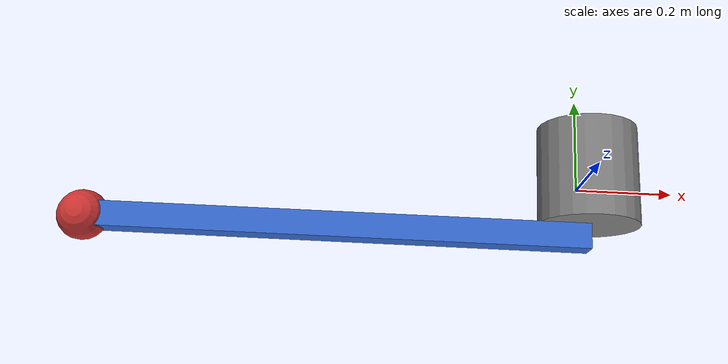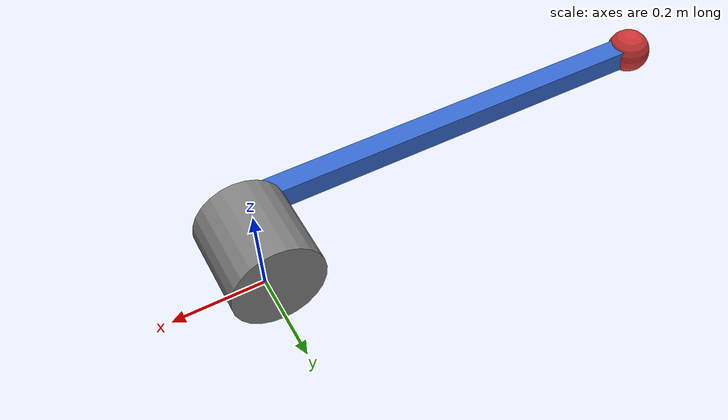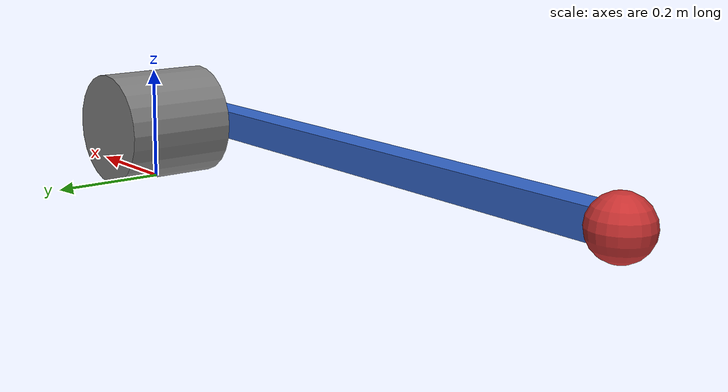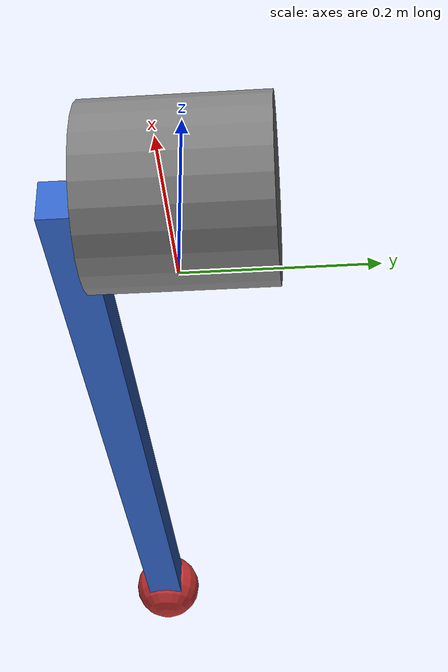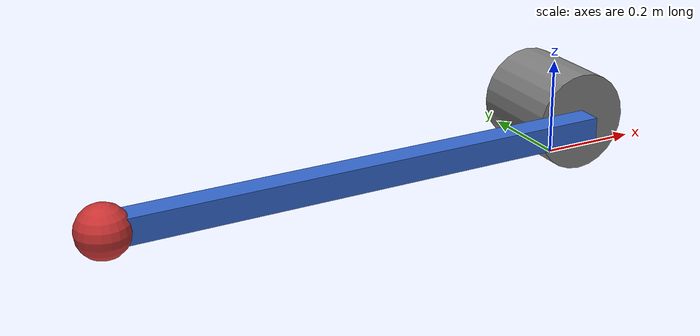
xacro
<?xml version="1.0"?>
<robot xmlns:xacro="http://www.ros.org/wiki/xacro" name="one_dof_arm">

  <!-- Arguments -->
  <xacro:arg name="payload_mass" default="1.0"/>

  <!-- ===== WORLD LINK ===== -->
  <link name="world"/>

  <!-- ===== WORLD TO BASE JOINT ===== -->
  <joint name="world_to_base" type="fixed">
    <parent link="world"/>
    <child link="base_link"/>
    <origin xyz="0 0 0" rpy="0 0 3.14159"/>
  </joint>

  <!-- ===== BASE LINK ===== -->
  <link name="base_link">
    <visual>
      <origin xyz="0 0 0.1" rpy="1.5708 0 0"/>
      <geometry>
        <cylinder radius="0.1" length="0.2"/>
      </geometry>
      <material name="grey">
        <color rgba="0.5 0.5 0.5 1"/>
      </material>
    </visual>
    <collision>
      <origin xyz="0 0 0.1" rpy="1.5708 0 0"/>
      <geometry>
        <cylinder radius="0.1" length="0.2"/>
      </geometry>
    </collision>
    <inertial>
      <origin xyz="0 0 0.1" rpy="1.5708 0 0"/>
      <mass value="5.0"/>
      <inertia ixx="0.02916" iyy="0.02916" izz="0.025" ixy="0" ixz="0" iyz="0"/>
    </inertial>
  </link>

  <!-- ===== ARM JOINT ===== -->
  <joint name="arm_joint" type="continuous">
    <parent link="base_link"/>
    <child link="arm_link"/>
    <origin xyz="0 0.125 0.1" rpy="0 0 0"/>
    <axis xyz="0 1 0"/>
    <limit effort="100.0" velocity="10.0"/>
    <dynamics damping="0.1" friction="0.1"/>
  </joint>

  <!-- ===== ARM LINK ===== -->
  <link name="arm_link">
    <visual>
      <origin xyz="0.5 0 0" rpy="0 0 0"/>
      <geometry>
        <box size="1.0 0.05 0.05"/>
      </geometry>
      <material name="blue">
        <color rgba="0.2 0.4 0.8 1"/>
      </material>
    </visual>
    <collision>
      <origin xyz="0.5 0 0" rpy="0 0 0"/>
      <geometry>
        <box size="1.0 0.05 0.05"/>
      </geometry>
    </collision>
    <inertial>
      <origin xyz="0.5 0 0" rpy="0 0 0"/>
      <mass value="1.0"/>
      <inertia ixx="0.00042" iyy="0.08354" izz="0.08354" ixy="0" ixz="0" iyz="0"/>
    </inertial>
  </link>

  <!-- ===== PAYLOAD JOINT ===== -->
  <joint name="payload_joint" type="fixed">
    <parent link="arm_link"/>
    <child link="payload_link"/>
    <origin xyz="1.0 0 0" rpy="0 0 0"/>
  </joint>

  <!-- ===== PAYLOAD LINK ===== -->
  <link name="payload_link">
    <visual>
      <origin xyz="0 0 0" rpy="0 0 0"/>
      <geometry>
        <sphere radius="0.05"/>
      </geometry>
      <material name="red">
        <color rgba="0.8 0.2 0.2 1"/>
      </material>
    </visual>
    <collision>
      <origin xyz="0 0 0" rpy="0 0 0"/>
      <geometry>
        <sphere radius="0.05"/>
      </geometry>
    </collision>
    <inertial>
      <origin xyz="0 0 0" rpy="0 0 0"/>
      <mass value="$(arg payload_mass)"/>
      <inertia ixx="0.001" iyy="0.001" izz="0.001" ixy="0" ixz="0" iyz="0"/>
    </inertial>
  </link>

  <!-- ===== ROS2 Control Hardware ===== -->
  <ros2_control name="GazeboSystem" type="system">
    <hardware>
      <plugin>gazebo_ros2_control/GazeboSystem</plugin>
    </hardware>
    <joint name="arm_joint">
      <command_interface name="effort"/>
      <state_interface name="position"/>
      <state_interface name="velocity"/>
    </joint>
  </ros2_control>

  <!-- ===== Gazebo ROS2 Control Plugin ===== -->
  <gazebo>
    <plugin name="gazebo_ros2_control" filename="libgazebo_ros2_control.so">
      <parameters>$(find robot_description)/config/arm_controllers.yaml</parameters>
      <robot_param>robot_description</robot_param>
      <robot_param_node>robot_state_publisher</robot_param_node>
      <hold_joints>false</hold_joints>
    </plugin>
  </gazebo>

  <!-- ===== Gazebo Materials (color) ===== -->
  <gazebo reference="base_link">
    <material>Gazebo/Grey</material>
  </gazebo>
  <gazebo reference="arm_link">
    <material>Gazebo/Blue</material>
  </gazebo>
  <gazebo reference="payload_link">
    <material>Gazebo/Red</material>
  </gazebo>

</robot>
